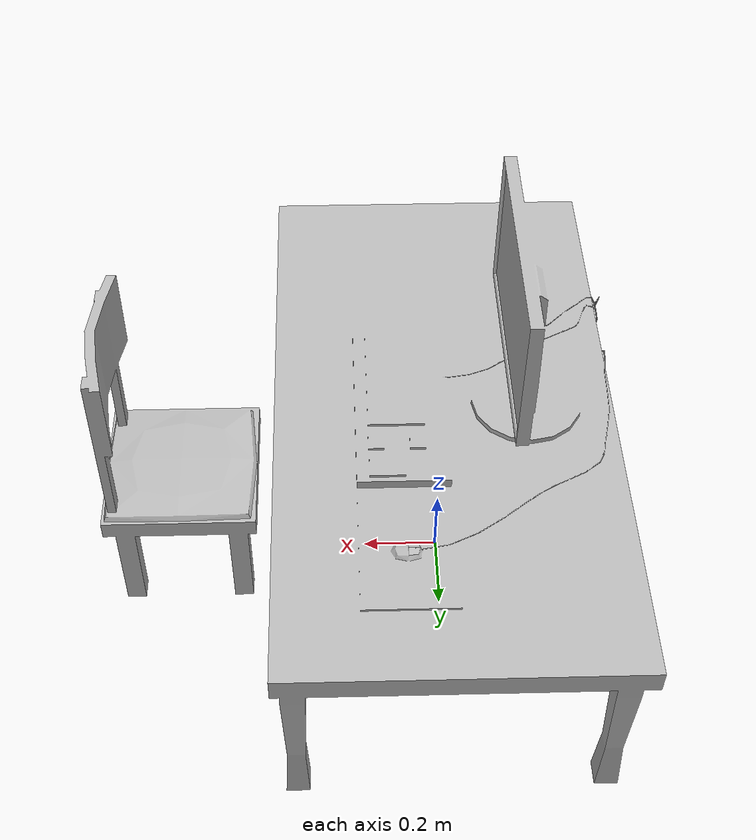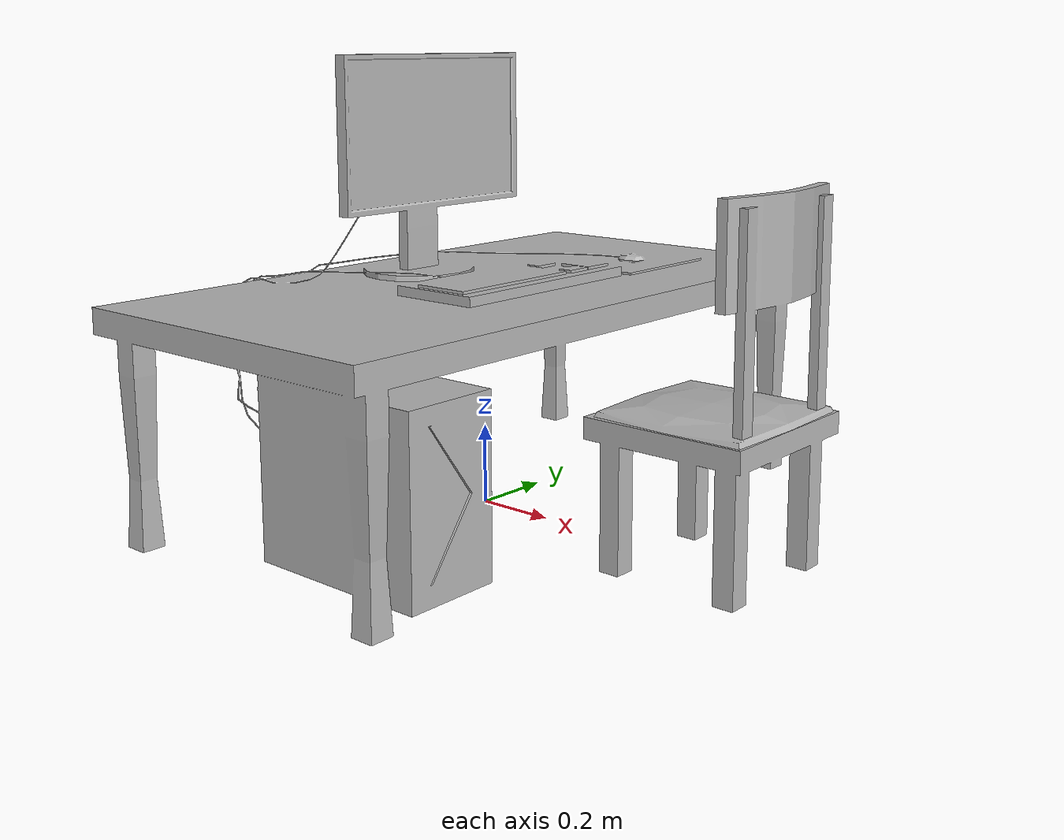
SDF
<?xml version="1.0" ?>
<sdf version="1.6">
  <model name="hacker_desk">
    <static>true</static>
    <link name="base_link">
      <collision name="base_collision">
        <geometry>
          <mesh>
            <scale>1 1 1</scale>
            <uri>model://hacker_desk/meshes/hacker_desk.dae</uri>
          </mesh>
        </geometry>
        <surface>
          <contact>
            <ode/>
          </contact>
          <bounce/>
          <friction>
            <ode>
              <mu>1.0</mu>
              <mu2>1.0</mu2>
            </ode>
          </friction>
        </surface>
      </collision>
      <visual name="base_visual">
        <geometry>
          <mesh>
            <scale>1 1 1</scale>
            <uri>model://hacker_desk/meshes/hacker_desk.dae</uri>
          </mesh>
        </geometry>
      </visual>
    </link>
  </model>
</sdf>
